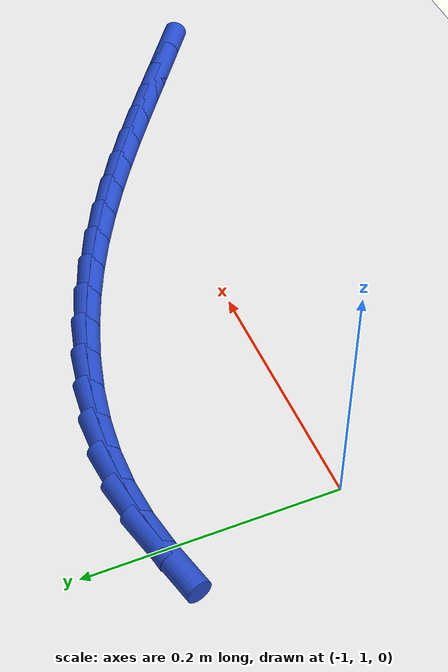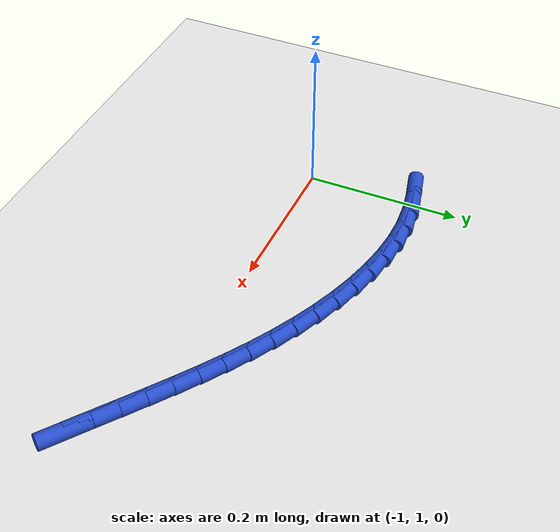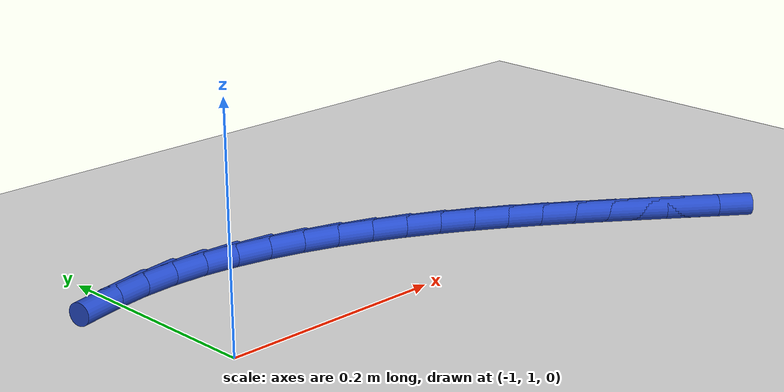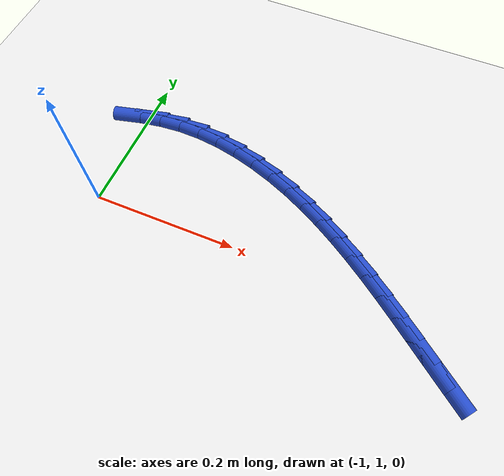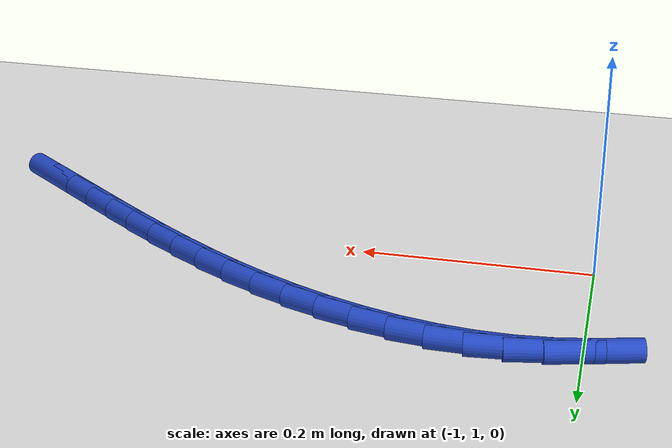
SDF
<sdf version="1.6">
 <world name="default">
  <model name="ground_plane">
   <static>1</static>
   <link name="link">
    <collision name="collision">
     <geometry><plane><normal>0 0 1</normal><size>100 100</size></plane></geometry>
     <surface><friction><ode><mu>100</mu><mu2>50</mu2></ode></friction></surface>
    </collision>
    <visual name="visual">
     <cast_shadows>0</cast_shadows>
     <geometry><plane><normal>0 0 1</normal><size>100 100</size></plane></geometry>
     <material>
      <script><uri>file://media/materials/scripts/gazebo.material</uri><name>Gazebo/WhiteGlow</name></script>
     </material>
    </visual>
   </link>
  </model>
  <model name="line">
   <link name="link_36">
    <pose>-0.5008753814139361 0.9337215373855666 0.01 0 1.57 -0.6454454754408275</pose>
    <collision name="collision">
     <geometry><cylinder><radius>0.01</radius><length>0.08</length></cylinder></geometry>
    </collision>
    <visual name="visual">
     <material>
      <script><name>Gazebo/Blue</name><uri>file://media/materials/scripts/gazebo.material</uri></script>
     </material>
     <geometry><cylinder><radius>0.01</radius><length>0.08</length></cylinder></geometry>
    </visual>
   </link>
   <link name="link_37">
    <pose>-0.5259197590773135 0.9525810184912994 0.01 0 1.57 -0.648026356055063</pose>
    <collision name="collision">
     <geometry><cylinder><radius>0.01</radius><length>0.08</length></cylinder></geometry>
    </collision>
    <visual name="visual">
     <material>
      <script><name>Gazebo/Blue</name><uri>file://media/materials/scripts/gazebo.material</uri></script>
     </material>
     <geometry><cylinder><radius>0.01</radius><length>0.08</length></cylinder></geometry>
    </visual>
   </link>
   <link name="link_38">
    <pose>-0.5508671332367554 0.9714685464061453 0.01 0 1.57 -0.6442411997056904</pose>
    <collision name="collision">
     <geometry><cylinder><radius>0.01</radius><length>0.08</length></cylinder></geometry>
    </collision>
    <visual name="visual">
     <material>
      <script><name>Gazebo/Blue</name><uri>file://media/materials/scripts/gazebo.material</uri></script>
     </material>
     <geometry><cylinder><radius>0.01</radius><length>0.08</length></cylinder></geometry>
    </visual>
   </link>
   <link name="link_39">
    <pose>-0.5758450295923194 0.9902308689605123 0.01 0 1.57 -0.6340628227858532</pose>
    <collision name="collision">
     <geometry><cylinder><radius>0.01</radius><length>0.08</length></cylinder></geometry>
    </collision>
    <visual name="visual">
     <material>
      <script><name>Gazebo/Blue</name><uri>file://media/materials/scripts/gazebo.material</uri></script>
     </material>
     <geometry><cylinder><radius>0.01</radius><length>0.08</length></cylinder></geometry>
    </visual>
   </link>
   <link name="link_40">
    <pose>-0.6009809738440636 1.0087147339848086 0.01 0 1.57 -0.6174811470293351</pose>
    <collision name="collision">
     <geometry><cylinder><radius>0.01</radius><length>0.08</length></cylinder></geometry>
    </collision>
    <visual name="visual">
     <material>
      <script><name>Gazebo/Blue</name><uri>file://media/materials/scripts/gazebo.material</uri></script>
     </material>
     <geometry><cylinder><radius>0.01</radius><length>0.08</length></cylinder></geometry>
    </visual>
   </link>
   <link name="link_41">
    <pose>-0.6264024916920453 1.0267668893094417 0.01 0 1.57 -0.5945158301193204</pose>
    <collision name="collision">
     <geometry><cylinder><radius>0.01</radius><length>0.08</length></cylinder></geometry>
    </collision>
    <visual name="visual">
     <material>
      <script><name>Gazebo/Blue</name><uri>file://media/materials/scripts/gazebo.material</uri></script>
     </material>
     <geometry><cylinder><radius>0.01</radius><length>0.08</length></cylinder></geometry>
    </visual>
   </link>
   <link name="link_42">
    <pose>-0.6522371088363226 1.0442340827648202 0.01 0 1.57 -0.5652363997656895</pose>
    <collision name="collision">
     <geometry><cylinder><radius>0.01</radius><length>0.08</length></cylinder></geometry>
    </collision>
    <visual name="visual">
     <material>
      <script><name>Gazebo/Blue</name><uri>file://media/materials/scripts/gazebo.material</uri></script>
     </material>
     <geometry><cylinder><radius>0.01</radius><length>0.08</length></cylinder></geometry>
    </visual>
   </link>
   <link name="link_43">
    <pose>-0.6786123509769534 1.0609630621813522 0.01 0 1.57 -0.5297888180299466</pose>
    <collision name="collision">
     <geometry><cylinder><radius>0.01</radius><length>0.08</length></cylinder></geometry>
    </collision>
    <visual name="visual">
     <material>
      <script><name>Gazebo/Blue</name><uri>file://media/materials/scripts/gazebo.material</uri></script>
     </material>
     <geometry><cylinder><radius>0.01</radius><length>0.08</length></cylinder></geometry>
    </visual>
   </link>
   <link name="link_44">
    <pose>-0.705655743813995 1.076800575389445 0.01 0 1.57 -0.4884260941336253</pose>
    <collision name="collision">
     <geometry><cylinder><radius>0.01</radius><length>0.08</length></cylinder></geometry>
    </collision>
    <visual name="visual">
     <material>
      <script><name>Gazebo/Blue</name><uri>file://media/materials/scripts/gazebo.material</uri></script>
     </material>
     <geometry><cylinder><radius>0.01</radius><length>0.08</length></cylinder></geometry>
    </visual>
   </link>
   <link name="link_45">
    <pose>-0.7334948130475054 1.091593370219507 0.01 0 1.57 -0.44154401655973075</pose>
    <collision name="collision">
     <geometry><cylinder><radius>0.01</radius><length>0.08</length></cylinder></geometry>
    </collision>
    <visual name="visual">
     <material>
      <script><name>Gazebo/Blue</name><uri>file://media/materials/scripts/gazebo.material</uri></script>
     </material>
     <geometry><cylinder><radius>0.01</radius><length>0.08</length></cylinder></geometry>
    </visual>
   </link>
   <link name="link_46">
    <pose>-0.7622542614769345 1.1051870447690146 0.01 0 1.57 -0.3896931485471</pose>
    <collision name="collision">
     <geometry><cylinder><radius>0.01</radius><length>0.08</length></cylinder></geometry>
    </collision>
    <visual name="visual">
     <material>
      <script><name>Gazebo/Blue</name><uri>file://media/materials/scripts/gazebo.material</uri></script>
     </material>
     <geometry><cylinder><radius>0.01</radius><length>0.08</length></cylinder></geometry>
    </visual>
   </link>
   <link name="link_47">
    <pose>-0.7919247577532474 1.1173726066641576 0.01 0 1.57 -0.33248504168207843</pose>
    <collision name="collision">
     <geometry><cylinder><radius>0.01</radius><length>0.08</length></cylinder></geometry>
    </collision>
    <visual name="visual">
     <material>
      <script><name>Gazebo/Blue</name><uri>file://media/materials/scripts/gazebo.material</uri></script>
     </material>
     <geometry><cylinder><radius>0.01</radius><length>0.08</length></cylinder></geometry>
    </visual>
   </link>
   <link name="link_48">
    <pose>-0.8223073312080927 1.1278638257530509 0.01 0 1.57 -0.2687404948337519</pose>
    <collision name="collision">
     <geometry><cylinder><radius>0.01</radius><length>0.08</length></cylinder></geometry>
    </collision>
    <visual name="visual">
     <material>
      <script><name>Gazebo/Blue</name><uri>file://media/materials/scripts/gazebo.material</uri></script>
     </material>
     <geometry><cylinder><radius>0.01</radius><length>0.08</length></cylinder></geometry>
    </visual>
   </link>
   <link name="link_49">
    <pose>-0.8531886456904374 1.1363686209982045 0.01 0 1.57 -0.19717793944265907</pose>
    <collision name="collision">
     <geometry><cylinder><radius>0.01</radius><length>0.08</length></cylinder></geometry>
    </collision>
    <visual name="visual">
     <material>
      <script><name>Gazebo/Blue</name><uri>file://media/materials/scripts/gazebo.material</uri></script>
     </material>
     <geometry><cylinder><radius>0.01</radius><length>0.08</length></cylinder></geometry>
    </visual>
   </link>
   <link name="link_50">
    <pose>-0.8843553650492477 1.1425949113621277 0.01 0 1.57 -0.11649466862774568</pose>
    <collision name="collision">
     <geometry><cylinder><radius>0.01</radius><length>0.08</length></cylinder></geometry>
    </collision>
    <visual name="visual">
     <material>
      <script><name>Gazebo/Blue</name><uri>file://media/materials/scripts/gazebo.material</uri></script>
     </material>
     <geometry><cylinder><radius>0.01</radius><length>0.08</length></cylinder></geometry>
    </visual>
   </link>
   <link name="link_51">
    <pose>-0.9155941531334906 1.1462506158073302 0.01 0 1.57 -0.025496104717886242</pose>
    <collision name="collision">
     <geometry><cylinder><radius>0.01</radius><length>0.08</length></cylinder></geometry>
    </collision>
    <visual name="visual">
     <material>
      <script><name>Gazebo/Blue</name><uri>file://media/materials/scripts/gazebo.material</uri></script>
     </material>
     <geometry><cylinder><radius>0.01</radius><length>0.08</length></cylinder></geometry>
    </visual>
   </link>
   <link name="link_52">
    <pose>-0.9466916737921333 1.147043653296322 0.01 0 1.57 0.07595522961773309</pose>
    <collision name="collision">
     <geometry><cylinder><radius>0.01</radius><length>0.08</length></cylinder></geometry>
    </collision>
    <visual name="visual">
     <material>
      <script><name>Gazebo/Blue</name><uri>file://media/materials/scripts/gazebo.material</uri></script>
     </material>
     <geometry><cylinder><radius>0.01</radius><length>0.08</length></cylinder></geometry>
    </visual>
   </link>
   <link name="link_53">
    <pose>-0.9774419042992067 1.1447035104973542 0.01 0 1.57 0.17045092742547432</pose>
    <collision name="collision">
     <geometry><cylinder><radius>0.01</radius><length>0.08</length></cylinder></geometry>
    </collision>
    <visual name="visual">
     <material>
      <script><name>Gazebo/Blue</name><uri>file://media/materials/scripts/gazebo.material</uri></script>
     </material>
     <geometry><cylinder><radius>0.01</radius><length>0.08</length></cylinder></geometry>
    </visual>
   </link>
   <link name="link_54">
    <pose>-1.0078138553914406 1.1394758576978292 0.01 0 1.57 0.23892675052437815</pose>
    <collision name="collision">
     <geometry><cylinder><radius>0.01</radius><length>0.08</length></cylinder></geometry>
    </collision>
    <visual name="visual">
     <material>
      <script><name>Gazebo/Blue</name><uri>file://media/materials/scripts/gazebo.material</uri></script>
     </material>
     <geometry><cylinder><radius>0.01</radius><length>0.08</length></cylinder></geometry>
    </visual>
   </link>
  </model>
 </world>
</sdf>
